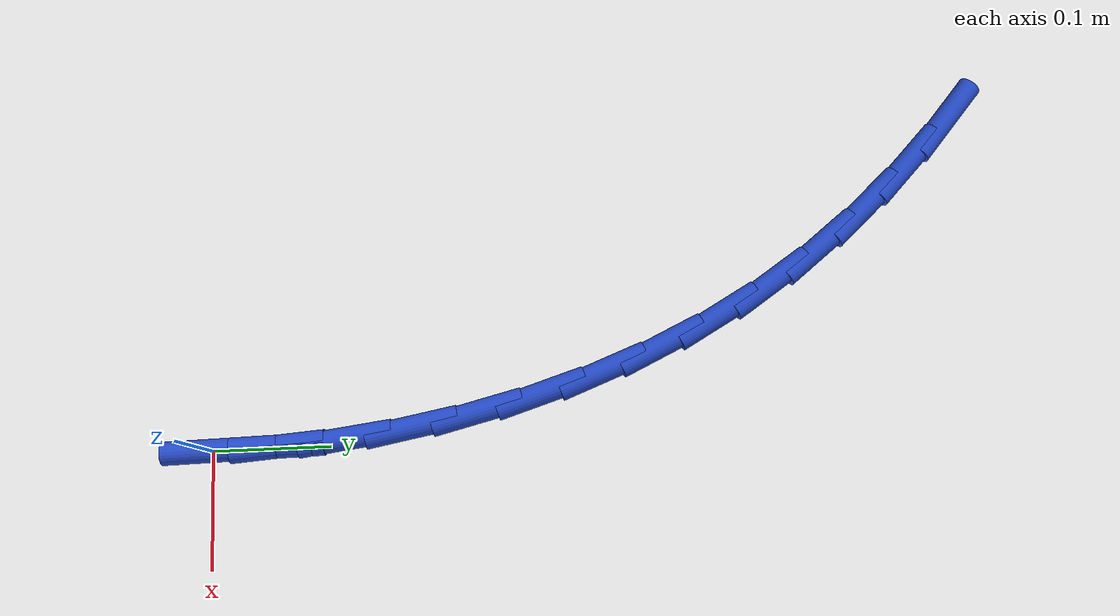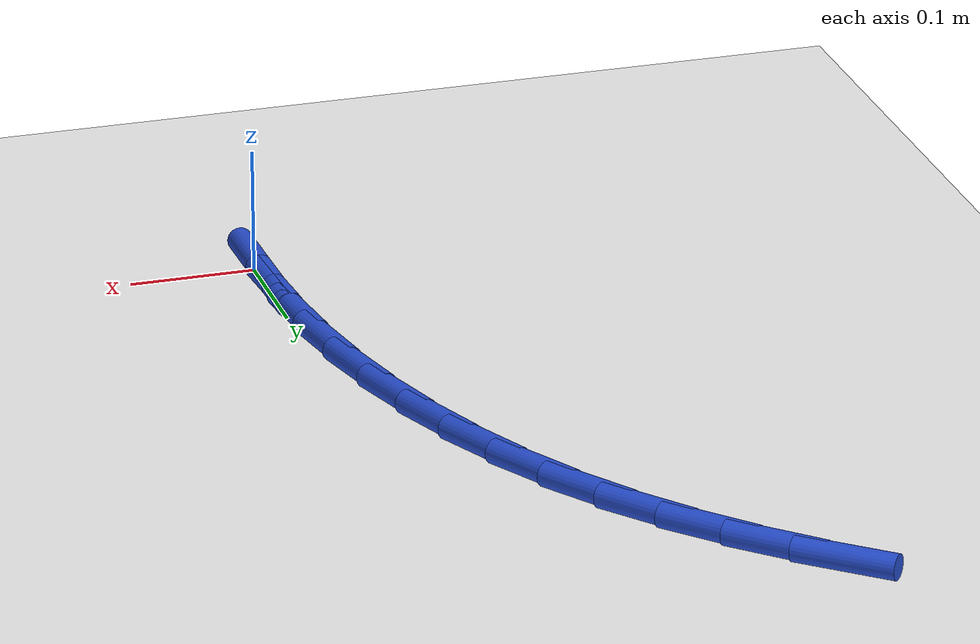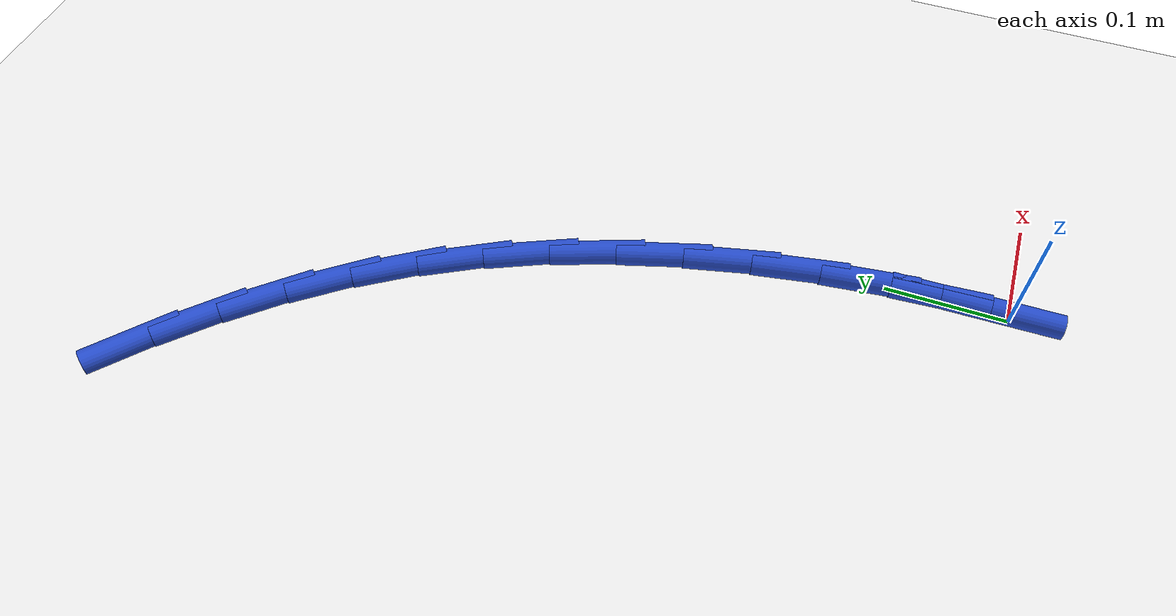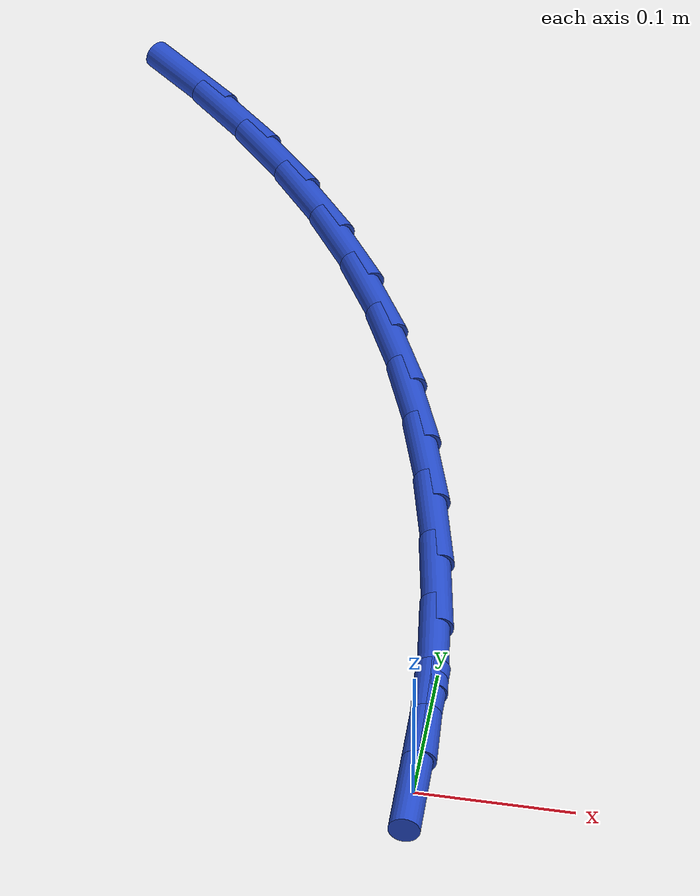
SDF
<sdf version="1.6">
 <world name="default">
  <model name="ground_plane">
   <static>1</static>
   <link name="link">
    <collision name="collision">
     <geometry><plane><normal>0 0 1</normal><size>100 100</size></plane></geometry>
     <surface><friction><ode><mu>100</mu><mu2>50</mu2></ode></friction></surface>
    </collision>
    <visual name="visual">
     <cast_shadows>0</cast_shadows>
     <geometry><plane><normal>0 0 1</normal><size>100 100</size></plane></geometry>
     <material>
      <script><uri>file://media/materials/scripts/gazebo.material</uri><name>Gazebo/WhiteGlow</name></script>
     </material>
    </visual>
   </link>
  </model>
  <model name="line">
   <link name="link_1">
    <pose>-0.001029000070132299 0.05705499751278612 0.01 0 1.57 -1.5001685672143317</pose>
    <collision name="collision">
     <geometry><cylinder><radius>0.01</radius><length>0.08</length></cylinder></geometry>
    </collision>
    <visual name="visual">
     <material>
      <script><name>Gazebo/Blue</name><uri>file://media/materials/scripts/gazebo.material</uri></script>
     </material>
     <geometry><cylinder><radius>0.01</radius><length>0.08</length></cylinder></geometry>
    </visual>
   </link>
   <link name="link_2">
    <pose>-0.0050524502712573655 0.11392722404968408 0.01 0 1.57 -1.4458312216064566</pose>
    <collision name="collision">
     <geometry><cylinder><radius>0.01</radius><length>0.08</length></cylinder></geometry>
    </collision>
    <visual name="visual">
     <material>
      <script><name>Gazebo/Blue</name><uri>file://media/materials/scripts/gazebo.material</uri></script>
     </material>
     <geometry><cylinder><radius>0.01</radius><length>0.08</length></cylinder></geometry>
    </visual>
   </link>
   <link name="link_3">
    <pose>-0.0121370232595585 0.17032421829723732 0.01 0 1.57 -1.3892389360356476</pose>
    <collision name="collision">
     <geometry><cylinder><radius>0.01</radius><length>0.08</length></cylinder></geometry>
    </collision>
    <visual name="visual">
     <material>
      <script><name>Gazebo/Blue</name><uri>file://media/materials/scripts/gazebo.material</uri></script>
     </material>
     <geometry><cylinder><radius>0.01</radius><length>0.08</length></cylinder></geometry>
    </visual>
   </link>
   <link name="link_4">
    <pose>-0.022349391691219033 0.22595351894198926 0.01 0 1.57 -1.3298826693486872</pose>
    <collision name="collision">
     <geometry><cylinder><radius>0.01</radius><length>0.08</length></cylinder></geometry>
    </collision>
    <visual name="visual">
     <material>
      <script><name>Gazebo/Blue</name><uri>file://media/materials/scripts/gazebo.material</uri></script>
     </material>
     <geometry><cylinder><radius>0.01</radius><length>0.08</length></cylinder></geometry>
    </visual>
   </link>
   <link name="link_5">
    <pose>-0.035756228222422304 0.2805226646704836 0.01 0 1.57 -1.2672642759297528</pose>
    <collision name="collision">
     <geometry><cylinder><radius>0.01</radius><length>0.08</length></cylinder></geometry>
    </collision>
    <visual name="visual">
     <material>
      <script><name>Gazebo/Blue</name><uri>file://media/materials/scripts/gazebo.material</uri></script>
     </material>
     <geometry><cylinder><radius>0.01</radius><length>0.08</length></cylinder></geometry>
    </visual>
   </link>
   <link name="link_6">
    <pose>-0.05242420550935164 0.33373919416926373 0.01 0 1.57 -1.2009122217204464</pose>
    <collision name="collision">
     <geometry><cylinder><radius>0.01</radius><length>0.08</length></cylinder></geometry>
    </collision>
    <visual name="visual">
     <material>
      <script><name>Gazebo/Blue</name><uri>file://media/materials/scripts/gazebo.material</uri></script>
     </material>
     <geometry><cylinder><radius>0.01</radius><length>0.08</length></cylinder></geometry>
    </visual>
   </link>
   <link name="link_7">
    <pose>-0.07241999620819037 0.3853106461248732 0.01 0 1.57 -1.1304072303694674</pose>
    <collision name="collision">
     <geometry><cylinder><radius>0.01</radius><length>0.08</length></cylinder></geometry>
    </collision>
    <visual name="visual">
     <material>
      <script><name>Gazebo/Blue</name><uri>file://media/materials/scripts/gazebo.material</uri></script>
     </material>
     <geometry><cylinder><radius>0.01</radius><length>0.08</length></cylinder></geometry>
    </visual>
   </link>
   <link name="link_8">
    <pose>-0.09581027297512179 0.4349445592238552 0.01 0 1.57 -1.0554194988660137</pose>
    <collision name="collision">
     <geometry><cylinder><radius>0.01</radius><length>0.08</length></cylinder></geometry>
    </collision>
    <visual name="visual">
     <material>
      <script><name>Gazebo/Blue</name><uri>file://media/materials/scripts/gazebo.material</uri></script>
     </material>
     <geometry><cylinder><radius>0.01</radius><length>0.08</length></cylinder></geometry>
    </visual>
   </link>
   <link name="link_9">
    <pose>-0.12266170846632929 0.4823484721527538 0.01 0 1.57 -0.9761527864350642</pose>
    <collision name="collision">
     <geometry><cylinder><radius>0.01</radius><length>0.08</length></cylinder></geometry>
    </collision>
    <visual name="visual">
     <material>
      <script><name>Gazebo/Blue</name><uri>file://media/materials/scripts/gazebo.material</uri></script>
     </material>
     <geometry><cylinder><radius>0.01</radius><length>0.08</length></cylinder></geometry>
    </visual>
   </link>
   <link name="link_10">
    <pose>-0.1530268797920805 0.5272473108912352 0.01 0 1.57 -0.8983704419136131</pose>
    <collision name="collision">
     <geometry><cylinder><radius>0.01</radius><length>0.08</length></cylinder></geometry>
    </collision>
    <visual name="visual">
     <material>
      <script><name>Gazebo/Blue</name><uri>file://media/materials/scripts/gazebo.material</uri></script>
     </material>
     <geometry><cylinder><radius>0.01</radius><length>0.08</length></cylinder></geometry>
    </visual>
   </link>
   <link name="link_11">
    <pose>-0.1867585061947239 0.5696125322985337 0.01 0 1.57 -0.826834886027958</pose>
    <collision name="collision">
     <geometry><cylinder><radius>0.01</radius><length>0.08</length></cylinder></geometry>
    </collision>
    <visual name="visual">
     <material>
      <script><name>Gazebo/Blue</name><uri>file://media/materials/scripts/gazebo.material</uri></script>
     </material>
     <geometry><cylinder><radius>0.01</radius><length>0.08</length></cylinder></geometry>
    </visual>
   </link>
   <link name="link_12">
    <pose>-0.223560920122736 0.6095986329470049 0.01 0 1.57 -0.7620223853541533</pose>
    <collision name="collision">
     <geometry><cylinder><radius>0.01</radius><length>0.08</length></cylinder></geometry>
    </collision>
    <visual name="visual">
     <material>
      <script><name>Gazebo/Blue</name><uri>file://media/materials/scripts/gazebo.material</uri></script>
     </material>
     <geometry><cylinder><radius>0.01</radius><length>0.08</length></cylinder></geometry>
    </visual>
   </link>
   <link name="link_13">
    <pose>-0.26313493970058777 0.6473644444366781 0.01 0 1.57 -0.7040089085585193</pose>
    <collision name="collision">
     <geometry><cylinder><radius>0.01</radius><length>0.08</length></cylinder></geometry>
    </collision>
    <visual name="visual">
     <material>
      <script><name>Gazebo/Blue</name><uri>file://media/materials/scripts/gazebo.material</uri></script>
     </material>
     <geometry><cylinder><radius>0.01</radius><length>0.08</length></cylinder></geometry>
    </visual>
   </link>
   <link name="link_120">
    <pose>2.42861286636753e-17 4.163336342344337e-17 0.01 0 1.57 -1.5529787000809008</pose>
    <collision name="collision">
     <geometry><cylinder><radius>0.01</radius><length>0.08</length></cylinder></geometry>
    </collision>
    <visual name="visual">
     <material>
      <script><name>Gazebo/Blue</name><uri>file://media/materials/scripts/gazebo.material</uri></script>
     </material>
     <geometry><cylinder><radius>0.01</radius><length>0.08</length></cylinder></geometry>
    </visual>
   </link>
   <link name="link_121">
    <pose>-0.001016900482427658 0.05706668376271583 0.01 0 1.57 -1.5529787000809008</pose>
    <collision name="collision">
     <geometry><cylinder><radius>0.01</radius><length>0.08</length></cylinder></geometry>
    </collision>
    <visual name="visual">
     <material>
      <script><name>Gazebo/Blue</name><uri>file://media/materials/scripts/gazebo.material</uri></script>
     </material>
     <geometry><cylinder><radius>0.01</radius><length>0.08</length></cylinder></geometry>
    </visual>
   </link>
  </model>
 </world>
</sdf>
